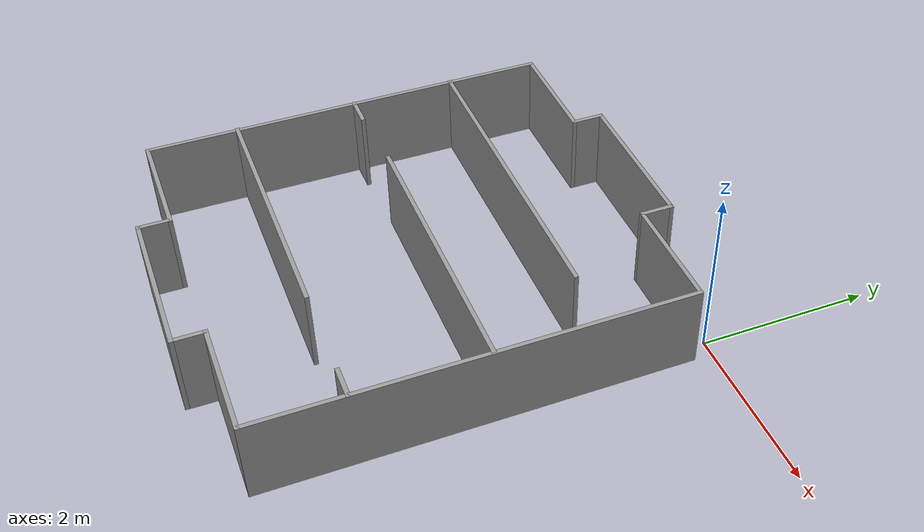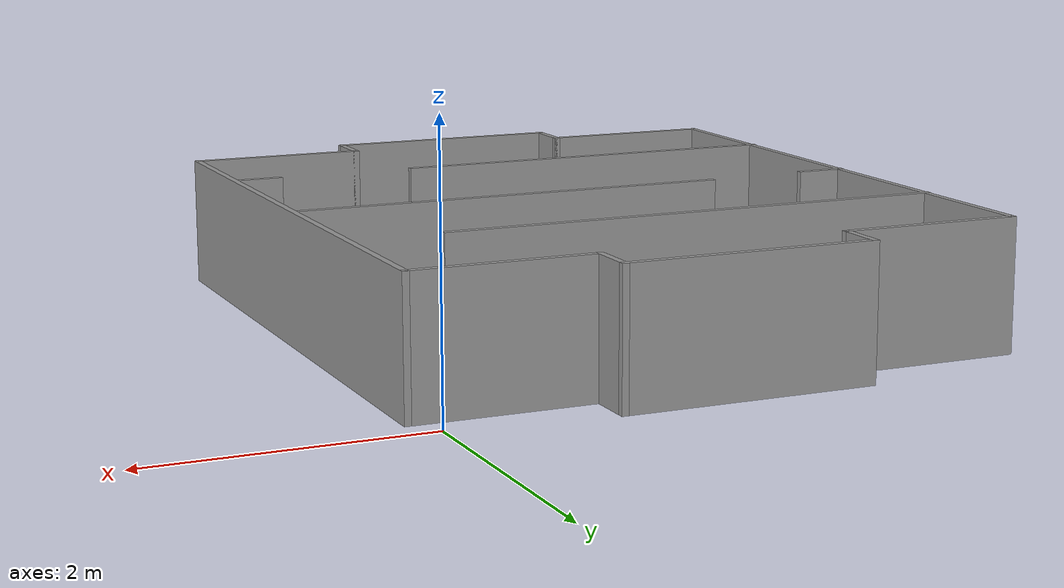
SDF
<?xml version='1.0'?>
<sdf version='1.6'>
  <model name='rgarena2-2'>
    <pose frame=''>-2.12351 -2.655 0 0 -0 0</pose>
    <link name='Wall_0'>
      <collision name='Wall_0_Collision'>
        <geometry>
          <box>
            <size>4.9 0.05 1</size>
          </box>
        </geometry>
        <pose frame=''>0 0 0.5 0 -0 0</pose>
      </collision>
      <visual name='Wall_0_Visual'>
        <pose frame=''>0 0 0.5 0 -0 0</pose>
        <geometry>
          <box>
            <size>4.9 0.05 1</size>
          </box>
        </geometry>
        <material>
          <script>
            <uri>file://media/materials/scripts/gazebo.material</uri>
            <name>Gazebo/Grey</name>
          </script>
          <ambient>1 1 1 1</ambient>
        </material>
        <meta>
          <layer>0</layer>
        </meta>
      </visual>
      <pose frame=''>-2.26749 -0 0 0 -0 -1.5708</pose>
    </link>
    <link name='Wall_1'>
      <collision name='Wall_1_Collision'>
        <geometry>
          <box>
            <size>1.4 0.05 1</size>
          </box>
        </geometry>
        <pose frame=''>0 0 0.5 0 -0 0</pose>
      </collision>
      <visual name='Wall_1_Visual'>
        <pose frame=''>0 0 0.5 0 -0 0</pose>
        <geometry>
          <box>
            <size>1.4 0.05 1</size>
          </box>
        </geometry>
        <material>
          <script>
            <uri>file://media/materials/scripts/gazebo.material</uri>
            <name>Gazebo/Grey</name>
          </script>
          <ambient>1 1 1 1</ambient>
        </material>
        <meta>
          <layer>0</layer>
        </meta>
      </visual>
      <pose frame=''>-1.59249 -2.425 0 0 -0 0</pose>
    </link>
    <link name='Wall_13'>
      <collision name='Wall_13_Collision'>
        <geometry>
          <box>
            <size>1.9 0.05 1</size>
          </box>
        </geometry>
        <pose frame=''>0 0 0.5 0 -0 0</pose>
      </collision>
      <visual name='Wall_13_Visual'>
        <pose frame=''>0 0 0.5 0 -0 0</pose>
        <geometry>
          <box>
            <size>1.9 0.05 1</size>
          </box>
        </geometry>
        <material>
          <script>
            <uri>file://media/materials/scripts/gazebo.material</uri>
            <name>Gazebo/Grey</name>
          </script>
          <ambient>1 1 1 1</ambient>
        </material>
        <meta>
          <layer>0</layer>
        </meta>
      </visual>
      <pose frame=''>0.007506 2.775 0 0 -0 3.14159</pose>
    </link>
    <link name='Wall_14'>
      <collision name='Wall_14_Collision'>
        <geometry>
          <box>
            <size>0.4 0.05 1</size>
          </box>
        </geometry>
        <pose frame=''>0 0 0.5 0 -0 0</pose>
      </collision>
      <visual name='Wall_14_Visual'>
        <pose frame=''>0 0 0.5 0 -0 0</pose>
        <geometry>
          <box>
            <size>0.4 0.05 1</size>
          </box>
        </geometry>
        <material>
          <script>
            <uri>file://media/materials/scripts/gazebo.material</uri>
            <name>Gazebo/Grey</name>
          </script>
          <ambient>1 1 1 1</ambient>
        </material>
        <meta>
          <layer>0</layer>
        </meta>
      </visual>
      <pose frame=''>-0.917494 2.6 0 0 -0 -1.5708</pose>
    </link>
    <link name='Wall_15'>
      <collision name='Wall_15_Collision'>
        <geometry>
          <box>
            <size>1.4 0.05 1</size>
          </box>
        </geometry>
        <pose frame=''>0 0 0.5 0 -0 0</pose>
      </collision>
      <visual name='Wall_15_Visual'>
        <pose frame=''>0 0 0.5 0 -0 0</pose>
        <geometry>
          <box>
            <size>1.4 0.05 1</size>
          </box>
        </geometry>
        <material>
          <script>
            <uri>file://media/materials/scripts/gazebo.material</uri>
            <name>Gazebo/Grey</name>
          </script>
          <ambient>1 1 1 1</ambient>
        </material>
        <meta>
          <layer>0</layer>
        </meta>
      </visual>
      <pose frame=''>-1.59249 2.425 0 0 -0 3.14159</pose>
    </link>
    <link name='Wall_2'>
      <collision name='Wall_2_Collision'>
        <geometry>
          <box>
            <size>0.4 0.05 1</size>
          </box>
        </geometry>
        <pose frame=''>0 0 0.5 0 -0 0</pose>
      </collision>
      <visual name='Wall_2_Visual'>
        <pose frame=''>0 0 0.5 0 -0 0</pose>
        <geometry>
          <box>
            <size>0.4 0.05 1</size>
          </box>
        </geometry>
        <material>
          <script>
            <uri>file://media/materials/scripts/gazebo.material</uri>
            <name>Gazebo/Grey</name>
          </script>
          <ambient>1 1 1 1</ambient>
        </material>
        <meta>
          <layer>0</layer>
        </meta>
      </visual>
      <pose frame=''>-0.917494 -2.6 0 0 -0 -1.5708</pose>
    </link>
    <link name='Wall_3'>
      <collision name='Wall_3_Collision'>
        <geometry>
          <box>
            <size>1.9 0.05 1</size>
          </box>
        </geometry>
        <pose frame=''>0 0 0.5 0 -0 0</pose>
      </collision>
      <visual name='Wall_3_Visual'>
        <pose frame=''>0 0 0.5 0 -0 0</pose>
        <geometry>
          <box>
            <size>1.9 0.05 1</size>
          </box>
        </geometry>
        <material>
          <script>
            <uri>file://media/materials/scripts/gazebo.material</uri>
            <name>Gazebo/Grey</name>
          </script>
          <ambient>1 1 1 1</ambient>
        </material>
        <meta>
          <layer>0</layer>
        </meta>
      </visual>
      <pose frame=''>0.007506 -2.775 0 0 -0 0</pose>
    </link>
    <link name='Wall_32'>
      <collision name='Wall_32_Collision'>
        <geometry>
          <box>
            <size>3.15002 0.05 1</size>
          </box>
        </geometry>
        <pose frame=''>0 0 0.5 0 -0 0</pose>
      </collision>
      <visual name='Wall_32_Visual'>
        <pose frame=''>0 0 0.5 0 -0 0</pose>
        <geometry>
          <box>
            <size>3.15002 0.05 1</size>
          </box>
        </geometry>
        <material>
          <script>
            <uri>file://media/materials/scripts/gazebo.material</uri>
            <name>Gazebo/Grey</name>
          </script>
          <ambient>1 1 1 1</ambient>
        </material>
        <meta>
          <layer>0</layer>
        </meta>
      </visual>
      <pose frame=''>-0.732494 -1.36 0 0 -0 0</pose>
    </link>
    <link name='Wall_34'>
      <collision name='Wall_34_Collision'>
        <geometry>
          <box>
            <size>0.4 0.05 1</size>
          </box>
        </geometry>
        <pose frame=''>0 0 0.5 0 -0 0</pose>
      </collision>
      <visual name='Wall_34_Visual'>
        <pose frame=''>0 0 0.5 0 -0 0</pose>
        <geometry>
          <box>
            <size>0.4 0.05 1</size>
          </box>
        </geometry>
        <material>
          <script>
            <uri>file://media/materials/scripts/gazebo.material</uri>
            <name>Gazebo/Grey</name>
          </script>
          <ambient>1 1 1 1</ambient>
        </material>
        <meta>
          <layer>0</layer>
        </meta>
      </visual>
      <pose frame=''>2.106 -1.35244 0 0 -0 0</pose>
    </link>
    <link name='Wall_36'>
      <collision name='Wall_36_Collision'>
        <geometry>
          <box>
            <size>0.400433 0.05 1</size>
          </box>
        </geometry>
        <pose frame=''>0 0 0.5 0 -0 0</pose>
      </collision>
      <visual name='Wall_36_Visual'>
        <pose frame=''>0 0 0.5 0 -0 0</pose>
        <geometry>
          <box>
            <size>0.400433 0.05 1</size>
          </box>
        </geometry>
        <material>
          <script>
            <uri>file://media/materials/scripts/gazebo.material</uri>
            <name>Gazebo/Grey</name>
          </script>
          <ambient>1 1 1 1</ambient>
        </material>
        <meta>
          <layer>0</layer>
        </meta>
      </visual>
      <pose frame=''>-2.10149 0.088 0 0 -0 0</pose>
    </link>
    <link name='Wall_38'>
      <collision name='Wall_38_Collision'>
        <geometry>
          <box>
            <size>3.39968 0.05 1</size>
          </box>
        </geometry>
        <pose frame=''>0 0 0.5 0 -0 0</pose>
      </collision>
      <visual name='Wall_38_Visual'>
        <pose frame=''>0 0 0.5 0 -0 0</pose>
        <geometry>
          <box>
            <size>3.39968 0.05 1</size>
          </box>
        </geometry>
        <material>
          <script>
            <uri>file://media/materials/scripts/gazebo.material</uri>
            <name>Gazebo/Grey</name>
          </script>
          <ambient>1 1 1 1</ambient>
        </material>
        <meta>
          <layer>0</layer>
        </meta>
      </visual>
      <pose frame=''>0.589505 0.14 0 0 -0 0</pose>
    </link>
    <link name='Wall_4'>
      <collision name='Wall_4_Collision'>
        <geometry>
          <box>
            <size>0.4 0.05 1</size>
          </box>
        </geometry>
        <pose frame=''>0 0 0.5 0 -0 0</pose>
      </collision>
      <visual name='Wall_4_Visual'>
        <pose frame=''>0 0 0.5 0 -0 0</pose>
        <geometry>
          <box>
            <size>0.4 0.05 1</size>
          </box>
        </geometry>
        <material>
          <script>
            <uri>file://media/materials/scripts/gazebo.material</uri>
            <name>Gazebo/Grey</name>
          </script>
          <ambient>1 1 1 1</ambient>
        </material>
        <meta>
          <layer>0</layer>
        </meta>
      </visual>
      <pose frame=''>0.932505 -2.6 0 0 -0 1.5708</pose>
    </link>
    <link name='Wall_40'>
      <collision name='Wall_40_Collision'>
        <geometry>
          <box>
            <size>3.90043 0.05 1</size>
          </box>
        </geometry>
        <pose frame=''>0 0 0.5 0 -0 0</pose>
      </collision>
      <visual name='Wall_40_Visual'>
        <pose frame=''>0 0 0.5 0 -0 0</pose>
        <geometry>
          <box>
            <size>3.90043 0.05 1</size>
          </box>
        </geometry>
        <material>
          <script>
            <uri>file://media/materials/scripts/gazebo.material</uri>
            <name>Gazebo/Grey</name>
          </script>
          <ambient>1 1 1 1</ambient>
        </material>
        <meta>
          <layer>0</layer>
        </meta>
      </visual>
      <pose frame=''>-0.351494 1.331 0 0 -0 0</pose>
    </link>
    <link name='Wall_5'>
      <collision name='Wall_5_Collision'>
        <geometry>
          <box>
            <size>1.4 0.05 1</size>
          </box>
        </geometry>
        <pose frame=''>0 0 0.5 0 -0 0</pose>
      </collision>
      <visual name='Wall_5_Visual'>
        <pose frame=''>0 0 0.5 0 -0 0</pose>
        <geometry>
          <box>
            <size>1.4 0.05 1</size>
          </box>
        </geometry>
        <material>
          <script>
            <uri>file://media/materials/scripts/gazebo.material</uri>
            <name>Gazebo/Grey</name>
          </script>
          <ambient>1 1 1 1</ambient>
        </material>
        <meta>
          <layer>0</layer>
        </meta>
      </visual>
      <pose frame=''>1.6075 -2.425 0 0 -0 0</pose>
    </link>
    <link name='Wall_6'>
      <collision name='Wall_6_Collision'>
        <geometry>
          <box>
            <size>4.9 0.05 1</size>
          </box>
        </geometry>
        <pose frame=''>0 0 0.5 0 -0 0</pose>
      </collision>
      <visual name='Wall_6_Visual'>
        <pose frame=''>0 0 0.5 0 -0 0</pose>
        <geometry>
          <box>
            <size>4.9 0.05 1</size>
          </box>
        </geometry>
        <material>
          <script>
            <uri>file://media/materials/scripts/gazebo.material</uri>
            <name>Gazebo/Grey</name>
          </script>
          <ambient>1 1 1 1</ambient>
        </material>
        <meta>
          <layer>0</layer>
        </meta>
      </visual>
      <pose frame=''>2.28251 -0 0 0 -0 1.5708</pose>
    </link>
    <link name='Wall_7'>
      <collision name='Wall_7_Collision'>
        <geometry>
          <box>
            <size>1.4 0.05 1</size>
          </box>
        </geometry>
        <pose frame=''>0 0 0.5 0 -0 0</pose>
      </collision>
      <visual name='Wall_7_Visual'>
        <pose frame=''>0 0 0.5 0 -0 0</pose>
        <geometry>
          <box>
            <size>1.4 0.05 1</size>
          </box>
        </geometry>
        <material>
          <script>
            <uri>file://media/materials/scripts/gazebo.material</uri>
            <name>Gazebo/Grey</name>
          </script>
          <ambient>1 1 1 1</ambient>
        </material>
        <meta>
          <layer>0</layer>
        </meta>
      </visual>
      <pose frame=''>1.6075 2.425 0 0 -0 3.14159</pose>
    </link>
    <link name='Wall_9'>
      <collision name='Wall_9_Collision'>
        <geometry>
          <box>
            <size>0.4 0.05 1</size>
          </box>
        </geometry>
        <pose frame=''>0 0 0.5 0 -0 0</pose>
      </collision>
      <visual name='Wall_9_Visual'>
        <pose frame=''>0 0 0.5 0 -0 0</pose>
        <geometry>
          <box>
            <size>0.4 0.05 1</size>
          </box>
        </geometry>
        <material>
          <script>
            <uri>file://media/materials/scripts/gazebo.material</uri>
            <name>Gazebo/Grey</name>
          </script>
          <ambient>1 1 1 1</ambient>
        </material>
        <meta>
          <layer>0</layer>
        </meta>
      </visual>
      <pose frame=''>0.932505 2.6 0 0 -0 1.5708</pose>
    </link>
    <static>1</static>
  </model>
</sdf>
